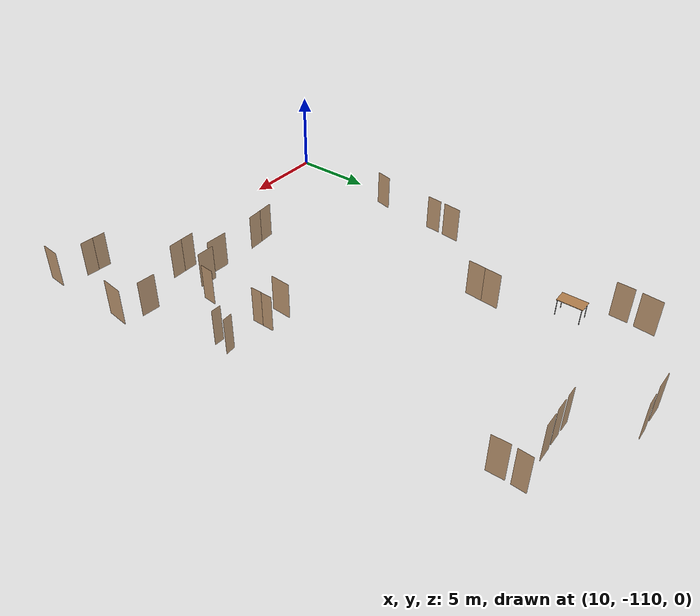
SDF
<sdf version="1.7">
 <world name="world">
  <model name="OpenRobotics/Table">
   <static>1</static>
   <link name="link">
    <collision name="surface">
     <pose>0 0 1 0 -0 0</pose>
     <geometry><box><size>1.5 0.8 0.03</size></box></geometry>
     <surface><friction><ode><mu>0.6</mu><mu2>0.6</mu2></ode></friction></surface>
    </collision>
    <visual name="visual1">
     <pose>0 0 1 0 -0 0</pose>
     <geometry><box><size>1.5 0.8 0.03</size></box></geometry>
     <material>
      <script><uri>file://media/materials/scripts/gazebo.material</uri><name>Gazebo/Wood</name></script>
     </material>
    </visual>
    <collision name="front_left_leg_c">
     <pose>0.68 0.38 0.5 0 -0 0</pose>
     <geometry><cylinder><radius>0.02</radius><length>1</length></cylinder></geometry>
    </collision>
    <visual name="front_left_leg">
     <pose>0.68 0.38 0.5 0 -0 0</pose>
     <geometry><cylinder><radius>0.02</radius><length>1</length></cylinder></geometry>
     <material>
      <script><uri>file://media/materials/scripts/gazebo.material</uri><name>Gazebo/Grey</name></script>
     </material>
    </visual>
    <collision name="front_right_leg_c">
     <pose>0.68 -0.38 0.5 0 -0 0</pose>
     <geometry><cylinder><radius>0.02</radius><length>1</length></cylinder></geometry>
    </collision>
    <visual name="front_right_leg">
     <pose>0.68 -0.38 0.5 0 -0 0</pose>
     <geometry><cylinder><radius>0.02</radius><length>1</length></cylinder></geometry>
     <material>
      <script><uri>file://media/materials/scripts/gazebo.material</uri><name>Gazebo/Grey</name></script>
     </material>
    </visual>
    <collision name="back_right_leg_c">
     <pose>-0.68 -0.38 0.5 0 -0 0</pose>
     <geometry><cylinder><radius>0.02</radius><length>1</length></cylinder></geometry>
    </collision>
    <visual name="back_right_leg">
     <pose>-0.68 -0.38 0.5 0 -0 0</pose>
     <geometry><cylinder><radius>0.02</radius><length>1</length></cylinder></geometry>
     <material>
      <script><uri>file://media/materials/scripts/gazebo.material</uri><name>Gazebo/Grey</name></script>
     </material>
    </visual>
    <collision name="back_left_leg_c">
     <pose>-0.68 0.38 0.5 0 -0 0</pose>
     <geometry><cylinder><radius>0.02</radius><length>1</length></cylinder></geometry>
    </collision>
    <visual name="back_left_leg">
     <pose>-0.68 0.38 0.5 0 -0 0</pose>
     <geometry><cylinder><radius>0.02</radius><length>1</length></cylinder></geometry>
     <material>
      <script><uri>file://media/materials/scripts/gazebo.material</uri><name>Gazebo/Grey</name></script>
     </material>
    </visual>
   </link>
   <pose>14.3878 -87.6644 0 0 -0 1.5708</pose>
  </model>
  <model name="D58">
   <pose>20.0583 -81.7461 0 0 -0 3.14159</pose>
   <link name="right">
    <pose>0 0 1.11 0 -0 0</pose>
    <visual name="right_visual">
     <geometry><box><size>0.745834 0.03 2.2</size></box></geometry>
     <material><ambient>0.5 0.25 0 0.6</ambient><diffuse>0.5 0.25 0 0.6</diffuse></material>
    </visual>
    <collision name="right_collision">
     <geometry><box><size>0.745834 0.03 2.2</size></box></geometry>
     <surface><contact><collide_bitmask>2</collide_bitmask></contact></surface>
    </collision>
    <inertial>
     <mass>50</mass>
     <inertia><ixx>20.1704</ixx><iyy>22.4845</iyy><izz>2.32154</izz><ixy>0</ixy><ixz>0</ixz><iyz>0</iyz></inertia>
    </inertial>
   </link>
   <joint name="right_joint" type="revolute">
    <parent>world</parent>
    <child>right</child>
    <axis>
     <xyz>0 0 -1</xyz>
     <limit><lower>0</lower><upper>1.57</upper></limit>
     <dynamics><spring_reference>0</spring_reference><spring_stiffness>0</spring_stiffness></dynamics>
    </axis>
    <pose>0.377917 0 0 0 -0 0</pose>
   </joint>
   <plugin name="door_D58" filename="libdoor.so">
    <v_max_door>0.5</v_max_door>
    <a_max_door>0.3</a_max_door>
    <a_nom_door>0.15</a_nom_door>
    <dx_min_door>0.01</dx_min_door>
    <f_max_door>500.0</f_max_door>
    <door name="D58" type="SwingDoor" left_joint_name="empty_joint" right_joint_name="right_joint"/>
   </plugin>
  </model>
  <model name="D59">
   <pose>18.5872 -81.7457 0 0 -0 3.11116</pose>
   <link name="right">
    <pose>0 0 1.11 0 -0 0</pose>
    <visual name="right_visual">
     <geometry><box><size>1.05197 0.03 2.2</size></box></geometry>
     <material><ambient>0.5 0.25 0 0.6</ambient><diffuse>0.5 0.25 0 0.6</diffuse></material>
    </visual>
    <collision name="right_collision">
     <geometry><box><size>1.05197 0.03 2.2</size></box></geometry>
     <surface><contact><collide_bitmask>2</collide_bitmask></contact></surface>
    </collision>
    <inertial>
     <mass>50</mass>
     <inertia><ixx>20.1704</ixx><iyy>24.7777</iyy><izz>4.61475</izz><ixy>0</ixy><ixz>0</ixz><iyz>0</iyz></inertia>
    </inertial>
   </link>
   <joint name="right_joint" type="revolute">
    <parent>world</parent>
    <child>right</child>
    <axis>
     <xyz>0 0 1</xyz>
     <limit><lower>0</lower><upper>1.57</upper></limit>
     <dynamics><spring_reference>0</spring_reference><spring_stiffness>0</spring_stiffness></dynamics>
    </axis>
    <pose>0.530985 0 0 0 -0 0</pose>
   </joint>
   <plugin name="door_D59" filename="libdoor.so">
    <v_max_door>0.5</v_max_door>
    <a_max_door>0.3</a_max_door>
    <a_nom_door>0.15</a_nom_door>
    <dx_min_door>0.01</dx_min_door>
    <f_max_door>500.0</f_max_door>
    <door name="D59" type="SwingDoor" left_joint_name="empty_joint" right_joint_name="right_joint"/>
   </plugin>
  </model>
  <model name="D60">
   <pose>26.1055 -84.7135 -0 0 -0 -1.59639</pose>
   <link name="right">
    <pose>0 0 1.11 0 -0 0</pose>
    <visual name="right_visual">
     <geometry><box><size>0.734288 0.03 2.2</size></box></geometry>
     <material><ambient>0.5 0.25 0 0.6</ambient><diffuse>0.5 0.25 0 0.6</diffuse></material>
    </visual>
    <collision name="right_collision">
     <geometry><box><size>0.734288 0.03 2.2</size></box></geometry>
     <surface><contact><collide_bitmask>2</collide_bitmask></contact></surface>
    </collision>
    <inertial>
     <mass>50</mass>
     <inertia><ixx>20.1704</ixx><iyy>22.4132</iyy><izz>2.25033</izz><ixy>0</ixy><ixz>0</ixz><iyz>0</iyz></inertia>
    </inertial>
   </link>
   <joint name="right_joint" type="revolute">
    <parent>world</parent>
    <child>right</child>
    <axis>
     <xyz>0 0 1</xyz>
     <limit><lower>0</lower><upper>1.57</upper></limit>
     <dynamics><spring_reference>0</spring_reference><spring_stiffness>0</spring_stiffness></dynamics>
    </axis>
    <pose>0.372144 0 0 0 -0 0</pose>
   </joint>
   <plugin name="door_D60" filename="libdoor.so">
    <v_max_door>0.5</v_max_door>
    <a_max_door>0.3</a_max_door>
    <a_nom_door>0.15</a_nom_door>
    <dx_min_door>0.01</dx_min_door>
    <f_max_door>500.0</f_max_door>
    <door name="D60" type="SwingDoor" left_joint_name="empty_joint" right_joint_name="right_joint"/>
   </plugin>
  </model>
  <model name="D61">
   <pose>26.1077 -85.81 -0 -0 -0 -1.51837</pose>
   <link name="right">
    <pose>0 0 1.11 0 -0 0</pose>
    <visual name="right_visual">
     <geometry><box><size>0.916027 0.03 2.2</size></box></geometry>
     <material><ambient>0.5 0.25 0 0.6</ambient><diffuse>0.5 0.25 0 0.6</diffuse></material>
    </visual>
    <collision name="right_collision">
     <geometry><box><size>0.916027 0.03 2.2</size></box></geometry>
     <surface><contact><collide_bitmask>2</collide_bitmask></contact></surface>
    </collision>
    <inertial>
     <mass>50</mass>
     <inertia><ixx>20.1704</ixx><iyy>23.6629</iyy><izz>3.50002</izz><ixy>0</ixy><ixz>0</ixz><iyz>0</iyz></inertia>
    </inertial>
   </link>
   <joint name="right_joint" type="revolute">
    <parent>world</parent>
    <child>right</child>
    <axis>
     <xyz>0 0 1</xyz>
     <limit><lower>0</lower><upper>1.57</upper></limit>
     <dynamics><spring_reference>0</spring_reference><spring_stiffness>0</spring_stiffness></dynamics>
    </axis>
    <pose>0.463014 0 0 0 -0 0</pose>
   </joint>
   <plugin name="door_D61" filename="libdoor.so">
    <v_max_door>0.5</v_max_door>
    <a_max_door>0.3</a_max_door>
    <a_nom_door>0.15</a_nom_door>
    <dx_min_door>0.01</dx_min_door>
    <f_max_door>500.0</f_max_door>
    <door name="D61" type="SwingDoor" left_joint_name="empty_joint" right_joint_name="right_joint"/>
   </plugin>
  </model>
  <model name="D62">
   <pose>23.8362 -84.654 0 0 0 -0.002275</pose>
   <link name="right">
    <pose>0 0 1.11 0 -0 0</pose>
    <visual name="right_visual">
     <geometry><box><size>0.837212 0.03 2.2</size></box></geometry>
     <material><ambient>0.5 0.25 0 0.6</ambient><diffuse>0.5 0.25 0 0.6</diffuse></material>
    </visual>
    <collision name="right_collision">
     <geometry><box><size>0.837212 0.03 2.2</size></box></geometry>
     <surface><contact><collide_bitmask>2</collide_bitmask></contact></surface>
    </collision>
    <inertial>
     <mass>50</mass>
     <inertia><ixx>20.1704</ixx><iyy>23.0872</iyy><izz>2.92427</izz><ixy>0</ixy><ixz>0</ixz><iyz>0</iyz></inertia>
    </inertial>
   </link>
   <joint name="right_joint" type="revolute">
    <parent>world</parent>
    <child>right</child>
    <axis>
     <xyz>0 0 1</xyz>
     <limit><lower>0</lower><upper>1.57</upper></limit>
     <dynamics><spring_reference>0</spring_reference><spring_stiffness>0</spring_stiffness></dynamics>
    </axis>
    <pose>0.423606 0 0 0 -0 0</pose>
   </joint>
   <plugin name="door_D62" filename="libdoor.so">
    <v_max_door>0.5</v_max_door>
    <a_max_door>0.3</a_max_door>
    <a_nom_door>0.15</a_nom_door>
    <dx_min_door>0.01</dx_min_door>
    <f_max_door>500.0</f_max_door>
    <door name="D62" type="SwingDoor" left_joint_name="empty_joint" right_joint_name="right_joint"/>
   </plugin>
  </model>
  <model name="D63">
   <pose>22.7839 -84.6684 0 0 -0 0</pose>
   <link name="right">
    <pose>0 0 1.11 0 -0 0</pose>
    <visual name="right_visual">
     <geometry><box><size>0.764994 0.03 2.2</size></box></geometry>
     <material><ambient>0.5 0.25 0 0.6</ambient><diffuse>0.5 0.25 0 0.6</diffuse></material>
    </visual>
    <collision name="right_collision">
     <geometry><box><size>0.764994 0.03 2.2</size></box></geometry>
     <surface><contact><collide_bitmask>2</collide_bitmask></contact></surface>
    </collision>
    <inertial>
     <mass>50</mass>
     <inertia><ixx>20.1704</ixx><iyy>22.6051</iyy><izz>2.44215</izz><ixy>0</ixy><ixz>0</ixz><iyz>0</iyz></inertia>
    </inertial>
   </link>
   <joint name="right_joint" type="revolute">
    <parent>world</parent>
    <child>right</child>
    <axis>
     <xyz>0 0 1</xyz>
     <limit><lower>0</lower><upper>1.57</upper></limit>
     <dynamics><spring_reference>0</spring_reference><spring_stiffness>0</spring_stiffness></dynamics>
    </axis>
    <pose>0.387497 0 0 0 -0 0</pose>
   </joint>
   <plugin name="door_D63" filename="libdoor.so">
    <v_max_door>0.5</v_max_door>
    <a_max_door>0.3</a_max_door>
    <a_nom_door>0.15</a_nom_door>
    <dx_min_door>0.01</dx_min_door>
    <f_max_door>500.0</f_max_door>
    <door name="D63" type="SwingDoor" left_joint_name="empty_joint" right_joint_name="right_joint"/>
   </plugin>
  </model>
  <model name="D64">
   <pose>21.8034 -84.6638 0 0 -0 0</pose>
   <link name="right">
    <pose>0 0 1.11 0 -0 0</pose>
    <visual name="right_visual">
     <geometry><box><size>0.658086 0.03 2.2</size></box></geometry>
     <material><ambient>0.5 0.25 0 0.6</ambient><diffuse>0.5 0.25 0 0.6</diffuse></material>
    </visual>
    <collision name="right_collision">
     <geometry><box><size>0.658086 0.03 2.2</size></box></geometry>
     <surface><contact><collide_bitmask>2</collide_bitmask></contact></surface>
    </collision>
    <inertial>
     <mass>50</mass>
     <inertia><ixx>20.1704</ixx><iyy>21.9712</iyy><izz>1.80824</izz><ixy>0</ixy><ixz>0</ixz><iyz>0</iyz></inertia>
    </inertial>
   </link>
   <joint name="right_joint" type="revolute">
    <parent>world</parent>
    <child>right</child>
    <axis>
     <xyz>0 0 1</xyz>
     <limit><lower>0</lower><upper>1.57</upper></limit>
     <dynamics><spring_reference>0</spring_reference><spring_stiffness>0</spring_stiffness></dynamics>
    </axis>
    <pose>0.334043 0 0 0 -0 0</pose>
   </joint>
   <plugin name="door_D64" filename="libdoor.so">
    <v_max_door>0.5</v_max_door>
    <a_max_door>0.3</a_max_door>
    <a_nom_door>0.15</a_nom_door>
    <dx_min_door>0.01</dx_min_door>
    <f_max_door>500.0</f_max_door>
    <door name="D64" type="SwingDoor" left_joint_name="empty_joint" right_joint_name="right_joint"/>
   </plugin>
  </model>
  <model name="D66">
   <pose>13.1239 -84.1144 0 0 -0 -1.66462</pose>
   <link name="right">
    <pose>0 0 1.11 0 -0 0</pose>
    <visual name="right_visual">
     <geometry><box><size>1.14567 0.03 2.2</size></box></geometry>
     <material><ambient>0.5 0.25 0 0.6</ambient><diffuse>0.5 0.25 0 0.6</diffuse></material>
    </visual>
    <collision name="right_collision">
     <geometry><box><size>1.14567 0.03 2.2</size></box></geometry>
     <surface><contact><collide_bitmask>2</collide_bitmask></contact></surface>
    </collision>
    <inertial>
     <mass>50</mass>
     <inertia><ixx>20.1704</ixx><iyy>25.6357</iyy><izz>5.47274</izz><ixy>0</ixy><ixz>0</ixz><iyz>0</iyz></inertia>
    </inertial>
   </link>
   <joint name="right_joint" type="revolute">
    <parent>world</parent>
    <child>right</child>
    <axis>
     <xyz>0 0 -1</xyz>
     <limit><lower>0</lower><upper>1.57</upper></limit>
     <dynamics><spring_reference>0</spring_reference><spring_stiffness>0</spring_stiffness></dynamics>
    </axis>
    <pose>0.577835 0 0 0 -0 0</pose>
   </joint>
   <plugin name="door_D66" filename="libdoor.so">
    <v_max_door>0.5</v_max_door>
    <a_max_door>0.3</a_max_door>
    <a_nom_door>0.15</a_nom_door>
    <dx_min_door>0.01</dx_min_door>
    <f_max_door>500.0</f_max_door>
    <door name="D66" type="SwingDoor" left_joint_name="empty_joint" right_joint_name="right_joint"/>
   </plugin>
  </model>
  <model name="D67">
   <pose>12.9902 -85.542 -0 0 -0 1.52667</pose>
   <link name="right">
    <pose>0 0 1.11 0 -0 0</pose>
    <visual name="right_visual">
     <geometry><box><size>1.01291 0.03 2.2</size></box></geometry>
     <material><ambient>0.5 0.25 0 0.6</ambient><diffuse>0.5 0.25 0 0.6</diffuse></material>
    </visual>
    <collision name="right_collision">
     <geometry><box><size>1.01291 0.03 2.2</size></box></geometry>
     <surface><contact><collide_bitmask>2</collide_bitmask></contact></surface>
    </collision>
    <inertial>
     <mass>50</mass>
     <inertia><ixx>20.1704</ixx><iyy>24.4416</iyy><izz>4.27868</izz><ixy>0</ixy><ixz>0</ixz><iyz>0</iyz></inertia>
    </inertial>
   </link>
   <joint name="right_joint" type="revolute">
    <parent>world</parent>
    <child>right</child>
    <axis>
     <xyz>0 0 1</xyz>
     <limit><lower>0</lower><upper>1.57</upper></limit>
     <dynamics><spring_reference>0</spring_reference><spring_stiffness>0</spring_stiffness></dynamics>
    </axis>
    <pose>0.511454 0 0 0 -0 0</pose>
   </joint>
   <plugin name="door_D67" filename="libdoor.so">
    <v_max_door>0.5</v_max_door>
    <a_max_door>0.3</a_max_door>
    <a_nom_door>0.15</a_nom_door>
    <dx_min_door>0.01</dx_min_door>
    <f_max_door>500.0</f_max_door>
    <door name="D67" type="SwingDoor" left_joint_name="empty_joint" right_joint_name="right_joint"/>
   </plugin>
  </model>
  <model name="D68">
   <pose>11.9035 -96.672 0 0 -0 -1.68287</pose>
   <link name="right">
    <pose>0 0 1.11 0 -0 0</pose>
    <visual name="right_visual">
     <geometry><box><size>1.12127 0.03 2.2</size></box></geometry>
     <material><ambient>0.5 0.25 0 0.6</ambient><diffuse>0.5 0.25 0 0.6</diffuse></material>
    </visual>
    <collision name="right_collision">
     <geometry><box><size>1.12127 0.03 2.2</size></box></geometry>
     <surface><contact><collide_bitmask>2</collide_bitmask></contact></surface>
    </collision>
    <inertial>
     <mass>50</mass>
     <inertia><ixx>20.1704</ixx><iyy>25.4052</iyy><izz>5.24227</izz><ixy>0</ixy><ixz>0</ixz><iyz>0</iyz></inertia>
    </inertial>
   </link>
   <joint name="right_joint" type="revolute">
    <parent>world</parent>
    <child>right</child>
    <axis>
     <xyz>0 0 -1</xyz>
     <limit><lower>0</lower><upper>1.57</upper></limit>
     <dynamics><spring_reference>0</spring_reference><spring_stiffness>0</spring_stiffness></dynamics>
    </axis>
    <pose>0.565635 0 0 0 -0 0</pose>
   </joint>
   <plugin name="door_D68" filename="libdoor.so">
    <v_max_door>0.5</v_max_door>
    <a_max_door>0.3</a_max_door>
    <a_nom_door>0.15</a_nom_door>
    <dx_min_door>0.01</dx_min_door>
    <f_max_door>500.0</f_max_door>
    <door name="D68" type="SwingDoor" left_joint_name="empty_joint" right_joint_name="right_joint"/>
   </plugin>
  </model>
  <model name="D69">
   <pose>11.7647 -97.9934 -0 0 -0 1.47115</pose>
   <link name="right">
    <pose>0 0 1.11 0 -0 0</pose>
    <visual name="right_visual">
     <geometry><box><size>0.945 0.03 2.2</size></box></geometry>
     <material><ambient>0.5 0.25 0 0.6</ambient><diffuse>0.5 0.25 0 0.6</diffuse></material>
    </visual>
    <collision name="right_collision">
     <geometry><box><size>0.945 0.03 2.2</size></box></geometry>
     <surface><contact><collide_bitmask>2</collide_bitmask></contact></surface>
    </collision>
    <inertial>
     <mass>50</mass>
     <inertia><ixx>20.1704</ixx><iyy>23.8876</iyy><izz>3.72469</izz><ixy>0</ixy><ixz>0</ixz><iyz>0</iyz></inertia>
    </inertial>
   </link>
   <joint name="right_joint" type="revolute">
    <parent>world</parent>
    <child>right</child>
    <axis>
     <xyz>0 0 1</xyz>
     <limit><lower>0</lower><upper>1.57</upper></limit>
     <dynamics><spring_reference>0</spring_reference><spring_stiffness>0</spring_stiffness></dynamics>
    </axis>
    <pose>0.4775 0 0 0 -0 0</pose>
   </joint>
   <plugin name="door_D69" filename="libdoor.so">
    <v_max_door>0.5</v_max_door>
    <a_max_door>0.3</a_max_door>
    <a_nom_door>0.15</a_nom_door>
    <dx_min_door>0.01</dx_min_door>
    <f_max_door>500.0</f_max_door>
    <door name="D69" type="SwingDoor" left_joint_name="empty_joint" right_joint_name="right_joint"/>
   </plugin>
  </model>
  <model name="D70">
   <pose>23.8285 -99.9244 0 0 0 -1.60901</pose>
   <link name="right">
    <pose>0 0 1.11 0 -0 0</pose>
    <visual name="right_visual">
     <geometry><box><size>1.20666 0.03 2.2</size></box></geometry>
     <material><ambient>0.5 0.25 0 0.6</ambient><diffuse>0.5 0.25 0 0.6</diffuse></material>
    </visual>
    <collision name="right_collision">
     <geometry><box><size>1.20666 0.03 2.2</size></box></geometry>
     <surface><contact><collide_bitmask>2</collide_bitmask></contact></surface>
    </collision>
    <inertial>
     <mass>50</mass>
     <inertia><ixx>20.1704</ixx><iyy>26.2335</iyy><izz>6.07056</izz><ixy>0</ixy><ixz>0</ixz><iyz>0</iyz></inertia>
    </inertial>
   </link>
   <joint name="right_joint" type="revolute">
    <parent>world</parent>
    <child>right</child>
    <axis>
     <xyz>0 0 1</xyz>
     <limit><lower>0</lower><upper>1.57</upper></limit>
     <dynamics><spring_reference>0</spring_reference><spring_stiffness>0</spring_stiffness></dynamics>
    </axis>
    <pose>0.608331 0 0 0 -0 0</pose>
   </joint>
   <plugin name="door_D70" filename="libdoor.so">
    <v_max_door>0.5</v_max_door>
    <a_max_door>0.3</a_max_door>
    <a_nom_door>0.15</a_nom_door>
    <dx_min_door>0.01</dx_min_door>
    <f_max_door>500.0</f_max_door>
    <door name="D70" type="SwingDoor" left_joint_name="empty_joint" right_joint_name="right_joint"/>
   </plugin>
  </model>
  <model name="D71">
   <pose>27.6293 -99.9583 0 0 -0 0.083125</pose>
   <link name="right">
    <pose>0 0 1.11 0 -0 0</pose>
    <visual name="right_visual">
     <geometry><box><size>0.578492 0.03 2.2</size></box></geometry>
     <material><ambient>0.5 0.25 0 0.6</ambient><diffuse>0.5 0.25 0 0.6</diffuse></material>
    </visual>
    <collision name="right_collision">
     <geometry><box><size>0.578492 0.03 2.2</size></box></geometry>
     <surface><contact><collide_bitmask>2</collide_bitmask></contact></surface>
    </collision>
    <inertial>
     <mass>50</mass>
     <inertia><ixx>20.1704</ixx><iyy>21.5611</iyy><izz>1.39814</izz><ixy>0</ixy><ixz>0</ixz><iyz>0</iyz></inertia>
    </inertial>
   </link>
   <joint name="right_joint" type="revolute">
    <parent>world</parent>
    <child>right</child>
    <axis>
     <xyz>0 0 -1</xyz>
     <limit><lower>0</lower><upper>1.57</upper></limit>
     <dynamics><spring_reference>0</spring_reference><spring_stiffness>0</spring_stiffness></dynamics>
    </axis>
    <pose>0.294246 0 0 0 -0 0</pose>
   </joint>
   <plugin name="door_D71" filename="libdoor.so">
    <v_max_door>0.5</v_max_door>
    <a_max_door>0.3</a_max_door>
    <a_nom_door>0.15</a_nom_door>
    <dx_min_door>0.01</dx_min_door>
    <f_max_door>500.0</f_max_door>
    <door name="D71" type="SwingDoor" left_joint_name="empty_joint" right_joint_name="right_joint"/>
   </plugin>
  </model>
  <model name="D72">
   <pose>27.5189 -100.877 -0 0 0 -0.018329</pose>
   <link name="right">
    <pose>0 0 1.11 0 -0 0</pose>
    <visual name="right_visual">
     <geometry><box><size>0.571456 0.03 2.2</size></box></geometry>
     <material><ambient>0.5 0.25 0 0.6</ambient><diffuse>0.5 0.25 0 0.6</diffuse></material>
    </visual>
    <collision name="right_collision">
     <geometry><box><size>0.571456 0.03 2.2</size></box></geometry>
     <surface><contact><collide_bitmask>2</collide_bitmask></contact></surface>
    </collision>
    <inertial>
     <mass>50</mass>
     <inertia><ixx>20.1704</ixx><iyy>21.5273</iyy><izz>1.36443</izz><ixy>0</ixy><ixz>0</ixz><iyz>0</iyz></inertia>
    </inertial>
   </link>
   <joint name="right_joint" type="revolute">
    <parent>world</parent>
    <child>right</child>
    <axis>
     <xyz>0 0 1</xyz>
     <limit><lower>0</lower><upper>1.57</upper></limit>
     <dynamics><spring_reference>0</spring_reference><spring_stiffness>0</spring_stiffness></dynamics>
    </axis>
    <pose>0.290728 0 0 0 -0 0</pose>
   </joint>
   <plugin name="door_D72" filename="libdoor.so">
    <v_max_door>0.5</v_max_door>
    <a_max_door>0.3</a_max_door>
    <a_nom_door>0.15</a_nom_door>
    <dx_min_door>0.01</dx_min_door>
    <f_max_door>500.0</f_max_door>
    <door name="D72" type="SwingDoor" left_joint_name="empty_joint" right_joint_name="right_joint"/>
   </plugin>
  </model>
  <model name="D73">
   <pose>25.4949 -103.731 -0 0 0 -1.63114</pose>
   <link name="right">
    <pose>0 0 1.11 0 -0 0</pose>
    <visual name="right_visual">
     <geometry><box><size>0.837846 0.03 2.2</size></box></geometry>
     <material><ambient>0.5 0.25 0 0.6</ambient><diffuse>0.5 0.25 0 0.6</diffuse></material>
    </visual>
    <collision name="right_collision">
     <geometry><box><size>0.837846 0.03 2.2</size></box></geometry>
     <surface><contact><collide_bitmask>2</collide_bitmask></contact></surface>
    </collision>
    <inertial>
     <mass>50</mass>
     <inertia><ixx>20.1704</ixx><iyy>23.0916</iyy><izz>2.92869</izz><ixy>0</ixy><ixz>0</ixz><iyz>0</iyz></inertia>
    </inertial>
   </link>
   <joint name="right_joint" type="revolute">
    <parent>world</parent>
    <child>right</child>
    <axis>
     <xyz>0 0 1</xyz>
     <limit><lower>0</lower><upper>1.57</upper></limit>
     <dynamics><spring_reference>0</spring_reference><spring_stiffness>0</spring_stiffness></dynamics>
    </axis>
    <pose>0.423923 0 0 0 -0 0</pose>
   </joint>
   <plugin name="door_D73" filename="libdoor.so">
    <v_max_door>0.5</v_max_door>
    <a_max_door>0.3</a_max_door>
    <a_nom_door>0.15</a_nom_door>
    <dx_min_door>0.01</dx_min_door>
    <f_max_door>500.0</f_max_door>
    <door name="D73" type="SwingDoor" left_joint_name="empty_joint" right_joint_name="right_joint"/>
   </plugin>
  </model>
  <model name="D74">
   <pose>24.3844 -105.005 0 0 -0 3.14159</pose>
   <link name="right">
    <pose>0 0 1.11 0 -0 0</pose>
    <visual name="right_visual">
     <geometry><box><size>1.06712 0.03 2.2</size></box></geometry>
     <material><ambient>0.5 0.25 0 0.6</ambient><diffuse>0.5 0.25 0 0.6</diffuse></material>
    </visual>
    <collision name="right_collision">
     <geometry><box><size>1.06712 0.03 2.2</size></box></geometry>
     <surface><contact><collide_bitmask>2</collide_bitmask></contact></surface>
    </collision>
    <inertial>
     <mass>50</mass>
     <inertia><ixx>20.1704</ixx><iyy>24.9115</iyy><izz>4.74855</izz><ixy>0</ixy><ixz>0</ixz><iyz>0</iyz></inertia>
    </inertial>
   </link>
   <joint name="right_joint" type="revolute">
    <parent>world</parent>
    <child>right</child>
    <axis>
     <xyz>0 0 1</xyz>
     <limit><lower>0</lower><upper>1.57</upper></limit>
     <dynamics><spring_reference>0</spring_reference><spring_stiffness>0</spring_stiffness></dynamics>
    </axis>
    <pose>0.538562 0 0 0 -0 0</pose>
   </joint>
   <plugin name="door_D74" filename="libdoor.so">
    <v_max_door>0.5</v_max_door>
    <a_max_door>0.3</a_max_door>
    <a_nom_door>0.15</a_nom_door>
    <dx_min_door>0.01</dx_min_door>
    <f_max_door>500.0</f_max_door>
    <door name="D74" type="SwingDoor" left_joint_name="empty_joint" right_joint_name="right_joint"/>
   </plugin>
  </model>
  <model name="D75">
   <pose>23.136 -105.456 -0 0 -0 3.1149</pose>
   <link name="right">
    <pose>0 0 1.11 0 -0 0</pose>
    <visual name="right_visual">
     <geometry><box><size>1.34491 0.03 2.2</size></box></geometry>
     <material><ambient>0.5 0.25 0 0.6</ambient><diffuse>0.5 0.25 0 0.6</diffuse></material>
    </visual>
    <collision name="right_collision">
     <geometry><box><size>1.34491 0.03 2.2</size></box></geometry>
     <surface><contact><collide_bitmask>2</collide_bitmask></contact></surface>
    </collision>
    <inertial>
     <mass>50</mass>
     <inertia><ixx>20.1704</ixx><iyy>27.7032</iyy><izz>7.54032</izz><ixy>0</ixy><ixz>0</ixz><iyz>0</iyz></inertia>
    </inertial>
   </link>
   <joint name="right_joint" type="revolute">
    <parent>world</parent>
    <child>right</child>
    <axis>
     <xyz>0 0 -1</xyz>
     <limit><lower>0</lower><upper>1.57</upper></limit>
     <dynamics><spring_reference>0</spring_reference><spring_stiffness>0</spring_stiffness></dynamics>
    </axis>
    <pose>0.677454 0 0 0 -0 0</pose>
   </joint>
   <plugin name="door_D75" filename="libdoor.so">
    <v_max_door>0.5</v_max_door>
    <a_max_door>0.3</a_max_door>
    <a_nom_door>0.15</a_nom_door>
    <dx_min_door>0.01</dx_min_door>
    <f_max_door>500.0</f_max_door>
    <door name="D75" type="SwingDoor" left_joint_name="empty_joint" right_joint_name="right_joint"/>
   </plugin>
  </model>
  <model name="D76">
   <pose>28.1097 -105.554 0 0 -0 3.08127</pose>
   <link name="right">
    <pose>0 0 1.11 0 -0 0</pose>
    <visual name="right_visual">
     <geometry><box><size>1.05069 0.03 2.2</size></box></geometry>
     <material><ambient>0.5 0.25 0 0.6</ambient><diffuse>0.5 0.25 0 0.6</diffuse></material>
    </visual>
    <collision name="right_collision">
     <geometry><box><size>1.05069 0.03 2.2</size></box></geometry>
     <surface><contact><collide_bitmask>2</collide_bitmask></contact></surface>
    </collision>
    <inertial>
     <mass>50</mass>
     <inertia><ixx>20.1704</ixx><iyy>24.7664</iyy><izz>4.60351</izz><ixy>0</ixy><ixz>0</ixz><iyz>0</iyz></inertia>
    </inertial>
   </link>
   <joint name="right_joint" type="revolute">
    <parent>world</parent>
    <child>right</child>
    <axis>
     <xyz>0 0 1</xyz>
     <limit><lower>0</lower><upper>1.57</upper></limit>
     <dynamics><spring_reference>0</spring_reference><spring_stiffness>0</spring_stiffness></dynamics>
    </axis>
    <pose>0.530343 0 0 0 -0 0</pose>
   </joint>
   <plugin name="door_D76" filename="libdoor.so">
    <v_max_door>0.5</v_max_door>
    <a_max_door>0.3</a_max_door>
    <a_nom_door>0.15</a_nom_door>
    <dx_min_door>0.01</dx_min_door>
    <f_max_door>500.0</f_max_door>
    <door name="D76" type="SwingDoor" left_joint_name="empty_joint" right_joint_name="right_joint"/>
   </plugin>
  </model>
  <model name="D77">
   <pose>29.6018 -106.475 -0 0 -0 1.48529</pose>
   <link name="right">
    <pose>0 0 1.11 0 -0 0</pose>
    <visual name="right_visual">
     <geometry><box><size>1.35736 0.03 2.2</size></box></geometry>
     <material><ambient>0.5 0.25 0 0.6</ambient><diffuse>0.5 0.25 0 0.6</diffuse></material>
    </visual>
    <collision name="right_collision">
     <geometry><box><size>1.35736 0.03 2.2</size></box></geometry>
     <surface><contact><collide_bitmask>2</collide_bitmask></contact></surface>
    </collision>
    <inertial>
     <mass>50</mass>
     <inertia><ixx>20.1704</ixx><iyy>27.8434</iyy><izz>7.68048</izz><ixy>0</ixy><ixz>0</ixz><iyz>0</iyz></inertia>
    </inertial>
   </link>
   <joint name="right_joint" type="revolute">
    <parent>world</parent>
    <child>right</child>
    <axis>
     <xyz>0 0 1</xyz>
     <limit><lower>0</lower><upper>1.57</upper></limit>
     <dynamics><spring_reference>0</spring_reference><spring_stiffness>0</spring_stiffness></dynamics>
    </axis>
    <pose>0.683678 0 0 0 -0 0</pose>
   </joint>
   <plugin name="door_D77" filename="libdoor.so">
    <v_max_door>0.5</v_max_door>
    <a_max_door>0.3</a_max_door>
    <a_nom_door>0.15</a_nom_door>
    <dx_min_door>0.01</dx_min_door>
    <f_max_door>500.0</f_max_door>
    <door name="D77" type="SwingDoor" left_joint_name="empty_joint" right_joint_name="right_joint"/>
   </plugin>
  </model>
  <model name="D78">
   <pose>29.6954 -111.814 -0 0 -0 1.51211</pose>
   <link name="right">
    <pose>0 0 1.11 0 -0 0</pose>
    <visual name="right_visual">
     <geometry><box><size>1.17675 0.03 2.2</size></box></geometry>
     <material><ambient>0.5 0.25 0 0.6</ambient><diffuse>0.5 0.25 0 0.6</diffuse></material>
    </visual>
    <collision name="right_collision">
     <geometry><box><size>1.17675 0.03 2.2</size></box></geometry>
     <surface><contact><collide_bitmask>2</collide_bitmask></contact></surface>
    </collision>
    <inertial>
     <mass>50</mass>
     <inertia><ixx>20.1704</ixx><iyy>25.9365</iyy><izz>5.77354</izz><ixy>0</ixy><ixz>0</ixz><iyz>0</iyz></inertia>
    </inertial>
   </link>
   <joint name="right_joint" type="revolute">
    <parent>world</parent>
    <child>right</child>
    <axis>
     <xyz>0 0 1</xyz>
     <limit><lower>0</lower><upper>1.57</upper></limit>
     <dynamics><spring_reference>0</spring_reference><spring_stiffness>0</spring_stiffness></dynamics>
    </axis>
    <pose>0.593377 0 0 0 -0 0</pose>
   </joint>
   <plugin name="door_D78" filename="libdoor.so">
    <v_max_door>0.5</v_max_door>
    <a_max_door>0.3</a_max_door>
    <a_nom_door>0.15</a_nom_door>
    <dx_min_door>0.01</dx_min_door>
    <f_max_door>500.0</f_max_door>
    <door name="D78" type="SwingDoor" left_joint_name="empty_joint" right_joint_name="right_joint"/>
   </plugin>
  </model>
  <model name="D79">
   <pose>11.2657 -102.182 0 0 -0 1.32947</pose>
   <link name="right">
    <pose>0 0 1.11 0 -0 0</pose>
    <visual name="right_visual">
     <geometry><box><size>1.03505 0.03 2.2</size></box></geometry>
     <material><ambient>0.5 0.25 0 0.6</ambient><diffuse>0.5 0.25 0 0.6</diffuse></material>
    </visual>
    <collision name="right_collision">
     <geometry><box><size>1.03505 0.03 2.2</size></box></geometry>
     <surface><contact><collide_bitmask>2</collide_bitmask></contact></surface>
    </collision>
    <inertial>
     <mass>50</mass>
     <inertia><ixx>20.1704</ixx><iyy>24.6306</iyy><izz>4.46764</izz><ixy>0</ixy><ixz>0</ixz><iyz>0</iyz></inertia>
    </inertial>
   </link>
   <joint name="right_joint" type="revolute">
    <parent>world</parent>
    <child>right</child>
    <axis>
     <xyz>0 0 1</xyz>
     <limit><lower>0</lower><upper>1.57</upper></limit>
     <dynamics><spring_reference>0</spring_reference><spring_stiffness>0</spring_stiffness></dynamics>
    </axis>
    <pose>0.522526 0 0 0 -0 0</pose>
   </joint>
   <plugin name="door_D79" filename="libdoor.so">
    <v_max_door>0.5</v_max_door>
    <a_max_door>0.3</a_max_door>
    <a_nom_door>0.15</a_nom_door>
    <dx_min_door>0.01</dx_min_door>
    <f_max_door>500.0</f_max_door>
    <door name="D79" type="SwingDoor" left_joint_name="empty_joint" right_joint_name="right_joint"/>
   </plugin>
  </model>
  <model name="DH11">
   <pose>16.1739 -92.0447 -0 0 -0 1.48675</pose>
   <link name="right">
    <pose>0.510832 0 1.11 0 -0 0</pose>
    <visual name="right_visual">
     <geometry><box><size>1.01166 0.03 2.2</size></box></geometry>
     <material><ambient>0.5 0.25 0 0.6</ambient><diffuse>0.5 0.25 0 0.6</diffuse></material>
    </visual>
    <collision name="right_collision">
     <geometry><box><size>1.01166 0.03 2.2</size></box></geometry>
     <surface><contact><collide_bitmask>2</collide_bitmask></contact></surface>
    </collision>
    <inertial>
     <mass>50</mass>
     <inertia><ixx>20.1704</ixx><iyy>24.4311</iyy><izz>4.26818</izz><ixy>0</ixy><ixz>0</ixz><iyz>0</iyz></inertia>
    </inertial>
   </link>
   <joint name="right_joint" type="revolute">
    <parent>world</parent>
    <child>right</child>
    <axis>
     <xyz>0 0 -1</xyz>
     <limit><lower>0</lower><upper>1.57</upper></limit>
     <dynamics><spring_reference>0</spring_reference><spring_stiffness>0</spring_stiffness></dynamics>
    </axis>
    <pose>0.510832 0 0 0 -0 0</pose>
   </joint>
   <link name="left">
    <pose>-0.510832 0 1.11 0 -0 0</pose>
    <visual name="left_visual">
     <geometry><box><size>1.01166 0.03 2.2</size></box></geometry>
     <material><ambient>0.5 0.25 0 0.6</ambient><diffuse>0.5 0.25 0 0.6</diffuse></material>
    </visual>
    <collision name="left_collision">
     <geometry><box><size>1.01166 0.03 2.2</size></box></geometry>
     <surface><contact><collide_bitmask>2</collide_bitmask></contact></surface>
    </collision>
    <inertial>
     <mass>50</mass>
     <inertia><ixx>20.1704</ixx><iyy>24.4311</iyy><izz>4.26818</izz><ixy>0</ixy><ixz>0</ixz><iyz>0</iyz></inertia>
    </inertial>
   </link>
   <joint name="left_joint" type="revolute">
    <parent>world</parent>
    <child>left</child>
    <axis>
     <xyz>0 0 -1</xyz>
     <limit><lower>-1.57</lower><upper>0</upper></limit>
     <dynamics><spring_reference>0</spring_reference><spring_stiffness>0</spring_stiffness></dynamics>
    </axis>
    <pose>-0.510832 0 0 0 -0 0</pose>
   </joint>
   <plugin name="door_DH11" filename="libdoor.so">
    <v_max_door>0.5</v_max_door>
    <a_max_door>0.3</a_max_door>
    <a_nom_door>0.15</a_nom_door>
    <dx_min_door>0.01</dx_min_door>
    <f_max_door>500.0</f_max_door>
    <door name="DH11" type="DoubleSwingDoor" left_joint_name="left_joint" right_joint_name="right_joint"/>
   </plugin>
  </model>
  <model name="DH12">
   <pose>25.1811 -100.001 -0 0 -0 1.58151</pose>
   <link name="right">
    <pose>0.343926 0 1.11 0 -0 0</pose>
    <visual name="right_visual">
     <geometry><box><size>0.677852 0.03 2.2</size></box></geometry>
     <material><ambient>0.5 0.25 0 0.6</ambient><diffuse>0.5 0.25 0 0.6</diffuse></material>
    </visual>
    <collision name="right_collision">
     <geometry><box><size>0.677852 0.03 2.2</size></box></geometry>
     <surface><contact><collide_bitmask>2</collide_bitmask></contact></surface>
    </collision>
    <inertial>
     <mass>50</mass>
     <inertia><ixx>20.1704</ixx><iyy>22.0812</iyy><izz>1.91826</izz><ixy>0</ixy><ixz>0</ixz><iyz>0</iyz></inertia>
    </inertial>
   </link>
   <joint name="right_joint" type="revolute">
    <parent>world</parent>
    <child>right</child>
    <axis>
     <xyz>0 0 -1</xyz>
     <limit><lower>0</lower><upper>1.57</upper></limit>
     <dynamics><spring_reference>0</spring_reference><spring_stiffness>0</spring_stiffness></dynamics>
    </axis>
    <pose>0.343926 0 0 0 -0 0</pose>
   </joint>
   <link name="left">
    <pose>-0.343926 0 1.11 0 -0 0</pose>
    <visual name="left_visual">
     <geometry><box><size>0.677852 0.03 2.2</size></box></geometry>
     <material><ambient>0.5 0.25 0 0.6</ambient><diffuse>0.5 0.25 0 0.6</diffuse></material>
    </visual>
    <collision name="left_collision">
     <geometry><box><size>0.677852 0.03 2.2</size></box></geometry>
     <surface><contact><collide_bitmask>2</collide_bitmask></contact></surface>
    </collision>
    <inertial>
     <mass>50</mass>
     <inertia><ixx>20.1704</ixx><iyy>22.0812</iyy><izz>1.91826</izz><ixy>0</ixy><ixz>0</ixz><iyz>0</iyz></inertia>
    </inertial>
   </link>
   <joint name="left_joint" type="revolute">
    <parent>world</parent>
    <child>left</child>
    <axis>
     <xyz>0 0 -1</xyz>
     <limit><lower>-1.57</lower><upper>0</upper></limit>
     <dynamics><spring_reference>0</spring_reference><spring_stiffness>0</spring_stiffness></dynamics>
    </axis>
    <pose>-0.343926 0 0 0 -0 0</pose>
   </joint>
   <plugin name="door_DH12" filename="libdoor.so">
    <v_max_door>0.5</v_max_door>
    <a_max_door>0.3</a_max_door>
    <a_nom_door>0.15</a_nom_door>
    <dx_min_door>0.01</dx_min_door>
    <f_max_door>500.0</f_max_door>
    <door name="DH12" type="DoubleSwingDoor" left_joint_name="left_joint" right_joint_name="right_joint"/>
   </plugin>
  </model>
  <model name="DH13">
   <pose>19.4764 -105.514 0 0 -0 -3.06198</pose>
   <link name="right">
    <pose>0.47684 0 1.11 0 -0 0</pose>
    <visual name="right_visual">
     <geometry><box><size>0.94368 0.03 2.2</size></box></geometry>
     <material><ambient>0.5 0.25 0 0.6</ambient><diffuse>0.5 0.25 0 0.6</diffuse></material>
    </visual>
    <collision name="right_collision">
     <geometry><box><size>0.94368 0.03 2.2</size></box></geometry>
     <surface><contact><collide_bitmask>2</collide_bitmask></contact></surface>
    </collision>
    <inertial>
     <mass>50</mass>
     <inertia><ixx>20.1704</ixx><iyy>23.8772</iyy><izz>3.7143</izz><ixy>0</ixy><ixz>0</ixz><iyz>0</iyz></inertia>
    </inertial>
   </link>
   <joint name="right_joint" type="revolute">
    <parent>world</parent>
    <child>right</child>
    <axis>
     <xyz>0 0 -1</xyz>
     <limit><lower>0</lower><upper>1.57</upper></limit>
     <dynamics><spring_reference>0</spring_reference><spring_stiffness>0</spring_stiffness></dynamics>
    </axis>
    <pose>0.47684 0 0 0 -0 0</pose>
   </joint>
   <link name="left">
    <pose>-0.47684 0 1.11 0 -0 0</pose>
    <visual name="left_visual">
     <geometry><box><size>0.94368 0.03 2.2</size></box></geometry>
     <material><ambient>0.5 0.25 0 0.6</ambient><diffuse>0.5 0.25 0 0.6</diffuse></material>
    </visual>
    <collision name="left_collision">
     <geometry><box><size>0.94368 0.03 2.2</size></box></geometry>
     <surface><contact><collide_bitmask>2</collide_bitmask></contact></surface>
    </collision>
    <inertial>
     <mass>50</mass>
     <inertia><ixx>20.1704</ixx><iyy>23.8772</iyy><izz>3.7143</izz><ixy>0</ixy><ixz>0</ixz><iyz>0</iyz></inertia>
    </inertial>
   </link>
   <joint name="left_joint" type="revolute">
    <parent>world</parent>
    <child>left</child>
    <axis>
     <xyz>0 0 -1</xyz>
     <limit><lower>-1.57</lower><upper>0</upper></limit>
     <dynamics><spring_reference>0</spring_reference><spring_stiffness>0</spring_stiffness></dynamics>
    </axis>
    <pose>-0.47684 0 0 0 -0 0</pose>
   </joint>
   <plugin name="door_DH13" filename="libdoor.so">
    <v_max_door>0.5</v_max_door>
    <a_max_door>0.3</a_max_door>
    <a_nom_door>0.15</a_nom_door>
    <dx_min_door>0.01</dx_min_door>
    <f_max_door>500.0</f_max_door>
    <door name="DH13" type="DoubleSwingDoor" left_joint_name="left_joint" right_joint_name="right_joint"/>
   </plugin>
  </model>
  <model name="DH14">
   <pose>24.4846 -106.881 -0 0 0 -3.1231</pose>
   <link name="right">
    <pose>0.422459 0 1.11 0 -0 0</pose>
    <visual name="right_visual">
     <geometry><box><size>0.834918 0.03 2.2</size></box></geometry>
     <material><ambient>0.5 0.25 0 0.6</ambient><diffuse>0.5 0.25 0 0.6</diffuse></material>
    </visual>
    <collision name="right_collision">
     <geometry><box><size>0.834918 0.03 2.2</size></box></geometry>
     <surface><contact><collide_bitmask>2</collide_bitmask></contact></surface>
    </collision>
    <inertial>
     <mass>50</mass>
     <inertia><ixx>20.1704</ixx><iyy>23.0712</iyy><izz>2.90828</izz><ixy>0</ixy><ixz>0</ixz><iyz>0</iyz></inertia>
    </inertial>
   </link>
   <joint name="right_joint" type="revolute">
    <parent>world</parent>
    <child>right</child>
    <axis>
     <xyz>0 0 -1</xyz>
     <limit><lower>0</lower><upper>1.57</upper></limit>
     <dynamics><spring_reference>0</spring_reference><spring_stiffness>0</spring_stiffness></dynamics>
    </axis>
    <pose>0.422459 0 0 0 -0 0</pose>
   </joint>
   <link name="left">
    <pose>-0.422459 0 1.11 0 -0 0</pose>
    <visual name="left_visual">
     <geometry><box><size>0.834918 0.03 2.2</size></box></geometry>
     <material><ambient>0.5 0.25 0 0.6</ambient><diffuse>0.5 0.25 0 0.6</diffuse></material>
    </visual>
    <collision name="left_collision">
     <geometry><box><size>0.834918 0.03 2.2</size></box></geometry>
     <surface><contact><collide_bitmask>2</collide_bitmask></contact></surface>
    </collision>
    <inertial>
     <mass>50</mass>
     <inertia><ixx>20.1704</ixx><iyy>23.0712</iyy><izz>2.90828</izz><ixy>0</ixy><ixz>0</ixz><iyz>0</iyz></inertia>
    </inertial>
   </link>
   <joint name="left_joint" type="revolute">
    <parent>world</parent>
    <child>left</child>
    <axis>
     <xyz>0 0 -1</xyz>
     <limit><lower>-1.57</lower><upper>0</upper></limit>
     <dynamics><spring_reference>0</spring_reference><spring_stiffness>0</spring_stiffness></dynamics>
    </axis>
    <pose>-0.422459 0 0 0 -0 0</pose>
   </joint>
   <plugin name="door_DH14" filename="libdoor.so">
    <v_max_door>0.5</v_max_door>
    <a_max_door>0.3</a_max_door>
    <a_nom_door>0.15</a_nom_door>
    <dx_min_door>0.01</dx_min_door>
    <f_max_door>500.0</f_max_door>
    <door name="DH14" type="DoubleSwingDoor" left_joint_name="left_joint" right_joint_name="right_joint"/>
   </plugin>
  </model>
  <model name="DH15">
   <pose>27.5258 -110.926 0 0 -0 3.0996</pose>
   <link name="right">
    <pose>0.386363 0 1.11 0 -0 0</pose>
    <visual name="right_visual">
     <geometry><box><size>0.762727 0.03 2.2</size></box></geometry>
     <material><ambient>0.5 0.25 0 0.6</ambient><diffuse>0.5 0.25 0 0.6</diffuse></material>
    </visual>
    <collision name="right_collision">
     <geometry><box><size>0.762727 0.03 2.2</size></box></geometry>
     <surface><contact><collide_bitmask>2</collide_bitmask></contact></surface>
    </collision>
    <inertial>
     <mass>50</mass>
     <inertia><ixx>20.1704</ixx><iyy>22.5906</iyy><izz>2.42772</izz><ixy>0</ixy><ixz>0</ixz><iyz>0</iyz></inertia>
    </inertial>
   </link>
   <joint name="right_joint" type="revolute">
    <parent>world</parent>
    <child>right</child>
    <axis>
     <xyz>0 0 -1</xyz>
     <limit><lower>0</lower><upper>1.57</upper></limit>
     <dynamics><spring_reference>0</spring_reference><spring_stiffness>0</spring_stiffness></dynamics>
    </axis>
    <pose>0.386363 0 0 0 -0 0</pose>
   </joint>
   <link name="left">
    <pose>-0.386363 0 1.11 0 -0 0</pose>
    <visual name="left_visual">
     <geometry><box><size>0.762727 0.03 2.2</size></box></geometry>
     <material><ambient>0.5 0.25 0 0.6</ambient><diffuse>0.5 0.25 0 0.6</diffuse></material>
    </visual>
    <collision name="left_collision">
     <geometry><box><size>0.762727 0.03 2.2</size></box></geometry>
     <surface><contact><collide_bitmask>2</collide_bitmask></contact></surface>
    </collision>
    <inertial>
     <mass>50</mass>
     <inertia><ixx>20.1704</ixx><iyy>22.5906</iyy><izz>2.42772</izz><ixy>0</ixy><ixz>0</ixz><iyz>0</iyz></inertia>
    </inertial>
   </link>
   <joint name="left_joint" type="revolute">
    <parent>world</parent>
    <child>left</child>
    <axis>
     <xyz>0 0 -1</xyz>
     <limit><lower>-1.57</lower><upper>0</upper></limit>
     <dynamics><spring_reference>0</spring_reference><spring_stiffness>0</spring_stiffness></dynamics>
    </axis>
    <pose>-0.386363 0 0 0 -0 0</pose>
   </joint>
   <plugin name="door_DH15" filename="libdoor.so">
    <v_max_door>0.5</v_max_door>
    <a_max_door>0.3</a_max_door>
    <a_nom_door>0.15</a_nom_door>
    <dx_min_door>0.01</dx_min_door>
    <f_max_door>500.0</f_max_door>
    <door name="DH15" type="DoubleSwingDoor" left_joint_name="left_joint" right_joint_name="right_joint"/>
   </plugin>
  </model>
 </world>
</sdf>
